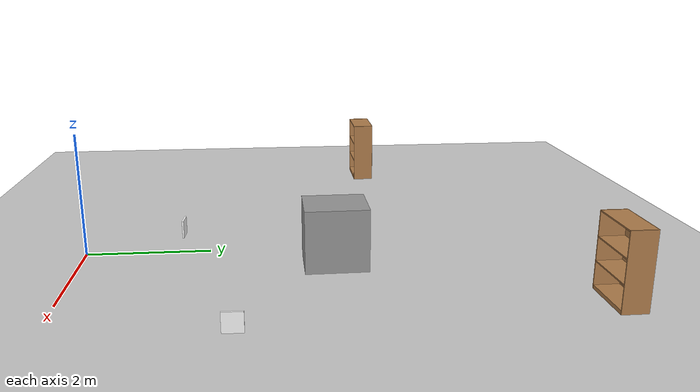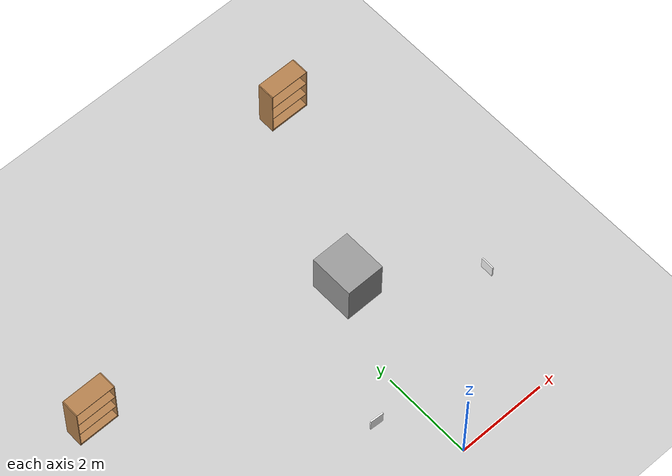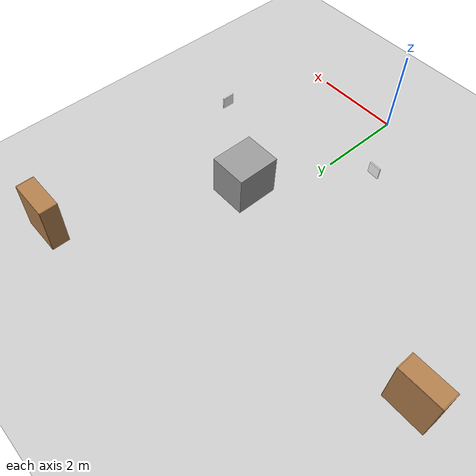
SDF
<sdf version="1.6">
 <world name="default">
  <model name="ground_plane">
   <static>1</static>
   <link name="link">
    <collision name="collision">
     <geometry><plane><normal>0 0 1</normal><size>100 100</size></plane></geometry>
     <surface><friction><ode><mu>100</mu><mu2>50</mu2></ode></friction></surface>
    </collision>
    <visual name="visual">
     <cast_shadows>0</cast_shadows>
     <geometry><plane><normal>0 0 1</normal><size>100 100</size></plane></geometry>
     <material>
      <script><uri>file://media/materials/scripts/gazebo.material</uri><name>Gazebo/Grey</name></script>
     </material>
    </visual>
   </link>
  </model>
  <model name="navigation_sign_right">
   <pose>3.01838 2.49396 0.15 0 -0 1.55671</pose>
   <link name="navigation_sign_right">
    <visual name="visual">
     <geometry><box><size>0.3 0.03 0.3</size></box></geometry>
     <material>
      <script>
       <uri>model://navigation_sign_right/materials/scripts</uri>
       <uri>model://navigation_sign_right/materials/textures</uri>
       <name>NavigationSign/Right</name>
      </script>
      <ambient>1 1 1 1</ambient>
      <diffuse>1 1 1 1</diffuse>
      <specular>0 0 0 1</specular>
      <emissive>1 1 1 0</emissive>
      <shader type="vertex"><normal_map>__default__</normal_map></shader>
     </material>
    </visual>
    <collision name="collision"><geometry><box><size>0.3 0.03 0.3</size></box></geometry></collision>
   </link>
   <static>1</static>
  </model>
  <model name="navigation_sign_left">
   <pose>-0.829188 1.49353 0.15 0 -0 3.07509</pose>
   <link name="navigation_sign_left">
    <visual name="visual">
     <geometry><box><size>0.3 0.03 0.3</size></box></geometry>
     <material>
      <script>
       <uri>model://navigation_sign_left/materials/scripts</uri>
       <uri>model://navigation_sign_left/materials/textures</uri>
       <name>NavigationSign/Left</name>
      </script>
      <ambient>1 1 1 1</ambient>
      <diffuse>1 1 1 1</diffuse>
      <specular>0 0 0 1</specular>
      <emissive>1 1 1 0</emissive>
      <shader type="vertex"><normal_map>__default__</normal_map></shader>
     </material>
    </visual>
    <collision name="collision"><geometry><box><size>0.3 0.03 0.3</size></box></geometry></collision>
   </link>
   <static>1</static>
  </model>
  <model name="unit_box_0_0">
   <link name="link">
    <pose>-0.177409 0.155122 0 0 -0 0</pose>
    <inertial>
     <mass>0.869582</mass>
     <inertia>
      <ixx>0.144931</ixx>
      <ixy>0</ixy>
      <ixz>0</ixz>
      <iyy>0.127262</iyy>
      <iyz>0</iyz>
      <izz>0.127262</izz>
     </inertia>
    </inertial>
    <visual name="visual">
     <geometry><box><size>0.869582 1 1</size></box></geometry>
     <material>
      <script><name>Gazebo/Grey</name><uri>file://media/materials/scripts/gazebo.material</uri></script>
      <ambient>0.3 0.3 0.3 1</ambient>
      <diffuse>0.7 0.7 0.7 1</diffuse>
      <specular>0.01 0.01 0.01 1</specular>
      <emissive>0 0 0 1</emissive>
     </material>
    </visual>
    <collision name="collision">
     <geometry><box><size>0.869582 1 1</size></box></geometry>
     <surface>
      <friction>
       <ode><mu>1</mu><mu2>1</mu2><fdir1>0 0 0</fdir1><slip1>0</slip1><slip2>0</slip2></ode>
       <torsional>
        <coefficient>1</coefficient>
        <patch_radius>0</patch_radius>
        <surface_radius>0</surface_radius>
        <use_patch_radius>1</use_patch_radius>
        <ode><slip>0</slip></ode>
       </torsional>
      </friction>
      <bounce><restitution_coefficient>0</restitution_coefficient><threshold>1e+06</threshold></bounce>
      <contact>
       <collide_without_contact>0</collide_without_contact>
       <collide_without_contact_bitmask>1</collide_without_contact_bitmask>
       <collide_bitmask>1</collide_bitmask>
       <ode>
        <soft_cfm>0</soft_cfm>
        <soft_erp>0.2</soft_erp>
        <kp>1e+13</kp>
        <kd>1</kd>
        <max_vel>0.01</max_vel>
        <min_depth>0</min_depth>
       </ode>
       <bullet>
        <split_impulse>1</split_impulse>
        <split_impulse_penetration_threshold>-0.01</split_impulse_penetration_threshold>
        <soft_cfm>0</soft_cfm>
        <soft_erp>0.2</soft_erp>
        <kp>1e+13</kp>
        <kd>1</kd>
       </bullet>
      </contact>
     </surface>
    </collision>
   </link>
   <static>0</static>
   <pose>0.918456 3.85326 0.500243 0.002847 -7e-06 0.002675</pose>
  </model>
  <model name="bookshelf_1">
   <static>1</static>
   <link name="link">
    <inertial><mass>1</mass></inertial>
    <collision name="back">
     <pose>0 0.005 0.6 0 -0 0</pose>
     <geometry><box><size>0.9 0.01 1.2</size></box></geometry>
    </collision>
    <visual name="visual1">
     <pose>0 0.005 0.6 0 -0 0</pose>
     <geometry><box><size>0.9 0.01 1.2</size></box></geometry>
     <material>
      <script><uri>file://media/materials/scripts/gazebo.material</uri><name>Gazebo/Wood</name></script>
     </material>
    </visual>
    <collision name="left_side">
     <pose>0.45 -0.195 0.6 0 -0 0</pose>
     <geometry><box><size>0.02 0.4 1.2</size></box></geometry>
    </collision>
    <visual name="visual2">
     <pose>0.45 -0.195 0.6 0 -0 0</pose>
     <geometry><box><size>0.02 0.4 1.2</size></box></geometry>
     <material>
      <script><uri>file://media/materials/scripts/gazebo.material</uri><name>Gazebo/Wood</name></script>
     </material>
    </visual>
    <collision name="right_side">
     <pose>-0.45 -0.195 0.6 0 -0 0</pose>
     <geometry><box><size>0.02 0.4 1.2</size></box></geometry>
    </collision>
    <visual name="visual3">
     <pose>-0.45 -0.195 0.6 0 -0 0</pose>
     <geometry><box><size>0.02 0.4 1.2</size></box></geometry>
     <material>
      <script><uri>file://media/materials/scripts/gazebo.material</uri><name>Gazebo/Wood</name></script>
     </material>
    </visual>
    <collision name="bottom">
     <pose>0 -0.195 0.03 0 -0 0</pose>
     <geometry><box><size>0.88 0.4 0.06</size></box></geometry>
    </collision>
    <visual name="visual4">
     <pose>0 -0.195 0.03 0 -0 0</pose>
     <geometry><box><size>0.88 0.4 0.06</size></box></geometry>
     <material>
      <script><uri>file://media/materials/scripts/gazebo.material</uri><name>Gazebo/Wood</name></script>
     </material>
    </visual>
    <collision name="top">
     <pose>0 -0.195 1.19 0 -0 0</pose>
     <geometry><box><size>0.88 0.4 0.02</size></box></geometry>
    </collision>
    <visual name="visual5">
     <pose>0 -0.195 1.19 0 -0 0</pose>
     <geometry><box><size>0.88 0.4 0.02</size></box></geometry>
     <material>
      <script><uri>file://media/materials/scripts/gazebo.material</uri><name>Gazebo/Wood</name></script>
     </material>
    </visual>
    <collision name="low_shelf">
     <pose>0 -0.195 0.43 0 -0 0</pose>
     <geometry><box><size>0.88 0.4 0.02</size></box></geometry>
    </collision>
    <visual name="visual6">
     <pose>0 -0.195 0.43 0 -0 0</pose>
     <geometry><box><size>0.88 0.4 0.02</size></box></geometry>
     <material>
      <script><uri>file://media/materials/scripts/gazebo.material</uri><name>Gazebo/Wood</name></script>
     </material>
    </visual>
    <collision name="high_shelf">
     <pose>0 -0.195 0.8 0 -0 0</pose>
     <geometry><box><size>0.88 0.4 0.02</size></box></geometry>
    </collision>
    <visual name="visual7">
     <pose>0 -0.195 0.8 0 -0 0</pose>
     <geometry><box><size>0.88 0.4 0.02</size></box></geometry>
     <material>
      <script><uri>file://media/materials/scripts/gazebo.material</uri><name>Gazebo/Wood</name></script>
     </material>
    </visual>
   </link>
   <pose>-4.75592 5.27588 0 0 -0 0</pose>
  </model>
  <model name="bookshelf_2">
   <static>1</static>
   <link name="link">
    <inertial><mass>1</mass></inertial>
    <collision name="back">
     <pose>0 0.005 0.6 0 -0 0</pose>
     <geometry><box><size>0.9 0.01 1.2</size></box></geometry>
    </collision>
    <visual name="visual1">
     <pose>0 0.005 0.6 0 -0 0</pose>
     <geometry><box><size>0.9 0.01 1.2</size></box></geometry>
     <material>
      <script><uri>file://media/materials/scripts/gazebo.material</uri><name>Gazebo/Wood</name></script>
     </material>
    </visual>
    <collision name="left_side">
     <pose>0.45 -0.195 0.6 0 -0 0</pose>
     <geometry><box><size>0.02 0.4 1.2</size></box></geometry>
    </collision>
    <visual name="visual2">
     <pose>0.45 -0.195 0.6 0 -0 0</pose>
     <geometry><box><size>0.02 0.4 1.2</size></box></geometry>
     <material>
      <script><uri>file://media/materials/scripts/gazebo.material</uri><name>Gazebo/Wood</name></script>
     </material>
    </visual>
    <collision name="right_side">
     <pose>-0.45 -0.195 0.6 0 -0 0</pose>
     <geometry><box><size>0.02 0.4 1.2</size></box></geometry>
    </collision>
    <visual name="visual3">
     <pose>-0.45 -0.195 0.6 0 -0 0</pose>
     <geometry><box><size>0.02 0.4 1.2</size></box></geometry>
     <material>
      <script><uri>file://media/materials/scripts/gazebo.material</uri><name>Gazebo/Wood</name></script>
     </material>
    </visual>
    <collision name="bottom">
     <pose>0 -0.195 0.03 0 -0 0</pose>
     <geometry><box><size>0.88 0.4 0.06</size></box></geometry>
    </collision>
    <visual name="visual4">
     <pose>0 -0.195 0.03 0 -0 0</pose>
     <geometry><box><size>0.88 0.4 0.06</size></box></geometry>
     <material>
      <script><uri>file://media/materials/scripts/gazebo.material</uri><name>Gazebo/Wood</name></script>
     </material>
    </visual>
    <collision name="top">
     <pose>0 -0.195 1.19 0 -0 0</pose>
     <geometry><box><size>0.88 0.4 0.02</size></box></geometry>
    </collision>
    <visual name="visual5">
     <pose>0 -0.195 1.19 0 -0 0</pose>
     <geometry><box><size>0.88 0.4 0.02</size></box></geometry>
     <material>
      <script><uri>file://media/materials/scripts/gazebo.material</uri><name>Gazebo/Wood</name></script>
     </material>
    </visual>
    <collision name="low_shelf">
     <pose>0 -0.195 0.43 0 -0 0</pose>
     <geometry><box><size>0.88 0.4 0.02</size></box></geometry>
    </collision>
    <visual name="visual6">
     <pose>0 -0.195 0.43 0 -0 0</pose>
     <geometry><box><size>0.88 0.4 0.02</size></box></geometry>
     <material>
      <script><uri>file://media/materials/scripts/gazebo.material</uri><name>Gazebo/Wood</name></script>
     </material>
    </visual>
    <collision name="high_shelf">
     <pose>0 -0.195 0.8 0 -0 0</pose>
     <geometry><box><size>0.88 0.4 0.02</size></box></geometry>
    </collision>
    <visual name="visual7">
     <pose>0 -0.195 0.8 0 -0 0</pose>
     <geometry><box><size>0.88 0.4 0.02</size></box></geometry>
     <material>
      <script><uri>file://media/materials/scripts/gazebo.material</uri><name>Gazebo/Wood</name></script>
     </material>
    </visual>
   </link>
   <pose>2.54648 8.05803 0 0 -0 0</pose>
  </model>
 </world>
</sdf>
